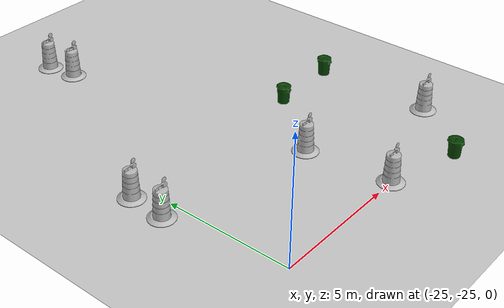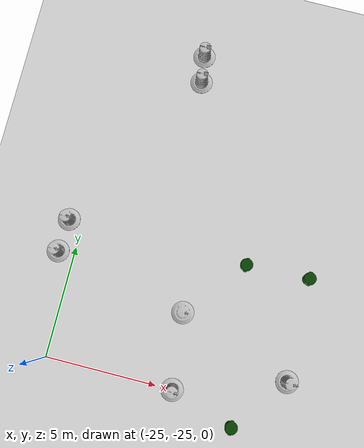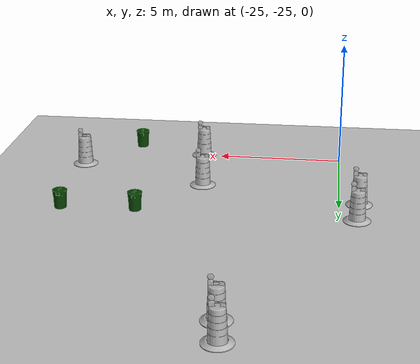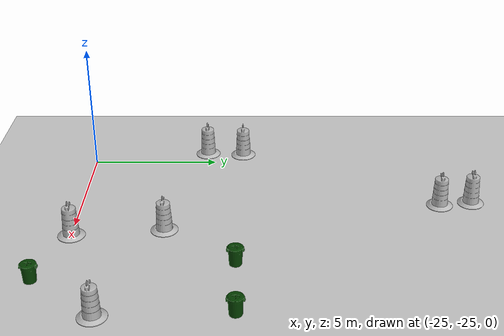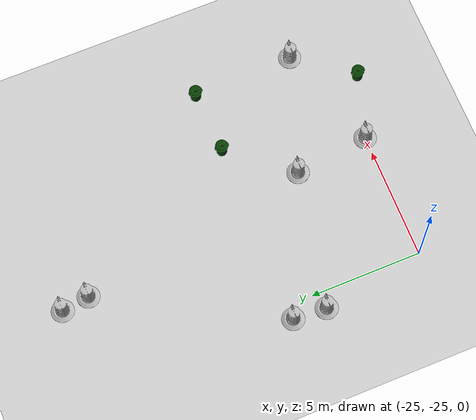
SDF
<sdf version="1.6">
 <world name="default">
  <model name="ground_plane">
   <static>1</static>
   <link name="link">
    <collision name="collision">
     <geometry><plane><normal>0 0 1</normal><size>100 100</size></plane></geometry>
     <surface>
      <contact><collide_bitmask>65535</collide_bitmask></contact>
      <friction><ode><mu>100</mu><mu2>50</mu2></ode></friction>
     </surface>
    </collision>
    <visual name="visual">
     <cast_shadows>0</cast_shadows>
     <geometry><plane><normal>0 0 1</normal><size>100 100</size></plane></geometry>
     <material>
      <script><uri>file://media/materials/scripts/gazebo.material</uri><name>Gazebo/Grey</name></script>
     </material>
    </visual>
   </link>
  </model>
  <model name="Construction Barrel_clone_0_clone_8">
   <link name="link">
    <inertial>
     <pose>0 0 0.4 0 -0 0</pose>
     <mass>500</mass>
     <inertia><ixx>51.2096</ixx><iyy>51.2096</iyy><izz>25</izz><ixy>0</ixy><ixz>0</ixz><iyz>0</iyz></inertia>
    </inertial>
    <collision name="collision">
     <geometry><mesh><uri>model://construction_barrel/meshes/construction_barrel.dae</uri></mesh></geometry>
    </collision>
    <visual name="visual">
     <geometry><mesh><uri>model://construction_barrel/meshes/construction_barrel.dae</uri></mesh></geometry>
    </visual>
   </link>
   <pose>-21.5907 -9.89433 0.024999 -1e-06 -3e-06 -0.008236</pose>
  </model>
  <model name="Construction Barrel_clone_0_clone_9">
   <link name="link">
    <inertial>
     <pose>0 0 0.4 0 -0 0</pose>
     <mass>500</mass>
     <inertia><ixx>51.2096</ixx><iyy>51.2096</iyy><izz>25</izz><ixy>0</ixy><ixz>0</ixz><iyz>0</iyz></inertia>
    </inertial>
    <collision name="collision">
     <geometry><mesh><uri>model://construction_barrel/meshes/construction_barrel.dae</uri></mesh></geometry>
    </collision>
    <visual name="visual">
     <geometry><mesh><uri>model://construction_barrel/meshes/construction_barrel.dae</uri></mesh></geometry>
    </visual>
   </link>
   <pose>-21.4181 -11.1299 0.024999 -1e-06 -3e-06 -0.008242</pose>
  </model>
  <model name="Construction Barrel_clone_0_clone_10">
   <link name="link">
    <inertial>
     <pose>0 0 0.4 0 -0 0</pose>
     <mass>500</mass>
     <inertia><ixx>51.2096</ixx><iyy>51.2096</iyy><izz>25</izz><ixy>0</ixy><ixz>0</ixz><iyz>0</iyz></inertia>
    </inertial>
    <collision name="collision">
     <geometry><mesh><uri>model://construction_barrel/meshes/construction_barrel.dae</uri></mesh></geometry>
    </collision>
    <visual name="visual">
     <geometry><mesh><uri>model://construction_barrel/meshes/construction_barrel.dae</uri></mesh></geometry>
    </visual>
   </link>
   <pose>-25.6503 -18.8355 0.024999 3e-06 0 -0.008236</pose>
  </model>
  <model name="Construction Barrel_clone_0_clone_11">
   <link name="link">
    <inertial>
     <pose>0 0 0.4 0 -0 0</pose>
     <mass>500</mass>
     <inertia><ixx>51.2096</ixx><iyy>51.2096</iyy><izz>25</izz><ixy>0</ixy><ixz>0</ixz><iyz>0</iyz></inertia>
    </inertial>
    <collision name="collision">
     <geometry><mesh><uri>model://construction_barrel/meshes/construction_barrel.dae</uri></mesh></geometry>
    </collision>
    <visual name="visual">
     <geometry><mesh><uri>model://construction_barrel/meshes/construction_barrel.dae</uri></mesh></geometry>
    </visual>
   </link>
   <pose>-25.7501 -20.3366 0.024999 -1e-06 -2e-06 -0.008237</pose>
  </model>
  <model name="Construction Barrel_clone_0_clone_12">
   <link name="link">
    <inertial>
     <pose>0 0 0.4 0 -0 0</pose>
     <mass>500</mass>
     <inertia><ixx>51.2096</ixx><iyy>51.2096</iyy><izz>25</izz><ixy>0</ixy><ixz>0</ixz><iyz>0</iyz></inertia>
    </inertial>
    <collision name="collision">
     <geometry><mesh><uri>model://construction_barrel/meshes/construction_barrel.dae</uri></mesh></geometry>
    </collision>
    <visual name="visual">
     <geometry><mesh><uri>model://construction_barrel/meshes/construction_barrel.dae</uri></mesh></geometry>
    </visual>
   </link>
   <pose>-19.6346 -21.6142 0.024999 -2e-06 -3e-06 -0.008238</pose>
  </model>
  <model name="Construction Barrel_clone_0_clone_13">
   <link name="link">
    <inertial>
     <pose>0 0 0.4 0 -0 0</pose>
     <mass>500</mass>
     <inertia><ixx>51.2096</ixx><iyy>51.2096</iyy><izz>25</izz><ixy>0</ixy><ixz>0</ixz><iyz>0</iyz></inertia>
    </inertial>
    <collision name="collision">
     <geometry><mesh><uri>model://construction_barrel/meshes/construction_barrel.dae</uri></mesh></geometry>
    </collision>
    <visual name="visual">
     <geometry><mesh><uri>model://construction_barrel/meshes/construction_barrel.dae</uri></mesh></geometry>
    </visual>
   </link>
   <pose>-19.2586 -24.988 0.024999 -1e-06 -2e-06 -0.00824</pose>
  </model>
  <model name="first_2015_trash_can">
   <link name="link">
    <inertial>
     <pose>0 0 0.3683 0 -0 0</pose>
     <mass>4.83076</mass>
     <inertia>
      <ixx>0.281534</ixx>
      <ixy>0</ixy>
      <ixz>0</ixz>
      <iyy>0.281534</iyy>
      <iyz>0</iyz>
      <izz>0.126223</izz>
     </inertia>
    </inertial>
    <visual name="visual">
     <geometry><mesh><uri>model://first_2015_trash_can/meshes/trash_can.dae</uri></mesh></geometry>
    </visual>
    <collision name="collision">
     <geometry><mesh><uri>model://first_2015_trash_can/meshes/trash_can.dae</uri></mesh></geometry>
    </collision>
   </link>
   <pose>-17.4322 -18.9095 0.024998 -2e-06 1.4e-05 -0.000556</pose>
  </model>
  <model name="first_2015_trash_can_clone">
   <link name="link">
    <inertial>
     <pose>0 0 0.3683 0 -0 0</pose>
     <mass>4.83076</mass>
     <inertia>
      <ixx>0.281534</ixx>
      <ixy>0</ixy>
      <ixz>0</ixz>
      <iyy>0.281534</iyy>
      <iyz>0</iyz>
      <izz>0.126223</izz>
     </inertia>
    </inertial>
    <visual name="visual">
     <geometry><mesh><uri>model://first_2015_trash_can/meshes/trash_can.dae</uri></mesh></geometry>
    </visual>
    <collision name="collision">
     <geometry><mesh><uri>model://first_2015_trash_can/meshes/trash_can.dae</uri></mesh></geometry>
    </collision>
   </link>
   <pose>-14.6012 -18.8134 0.025001 2.5e-05 -8e-06 -0.000584</pose>
  </model>
  <model name="first_2015_trash_can_clone_4">
   <link name="link">
    <inertial>
     <pose>0 0 0.3683 0 -0 0</pose>
     <mass>4.83076</mass>
     <inertia>
      <ixx>0.281534</ixx>
      <ixy>0</ixy>
      <ixz>0</ixz>
      <iyy>0.281534</iyy>
      <iyz>0</iyz>
      <izz>0.126223</izz>
     </inertia>
    </inertial>
    <visual name="visual">
     <geometry><mesh><uri>model://first_2015_trash_can/meshes/trash_can.dae</uri></mesh></geometry>
    </visual>
    <collision name="collision">
     <geometry><mesh><uri>model://first_2015_trash_can/meshes/trash_can.dae</uri></mesh></geometry>
    </collision>
   </link>
   <pose>-16.4244 -25.8484 0.024995 1e-06 -3e-06 -0.000417</pose>
  </model>
  <model name="Construction Barrel_clone_0_clone_13_clone">
   <link name="link">
    <inertial>
     <pose>0 0 0.4 0 -0 0</pose>
     <mass>500</mass>
     <inertia><ixx>51.2096</ixx><iyy>51.2096</iyy><izz>25</izz><ixy>0</ixy><ixz>0</ixz><iyz>0</iyz></inertia>
    </inertial>
    <collision name="collision">
     <geometry><mesh><uri>model://construction_barrel/meshes/construction_barrel.dae</uri></mesh></geometry>
    </collision>
    <visual name="visual">
     <geometry><mesh><uri>model://construction_barrel/meshes/construction_barrel.dae</uri></mesh></geometry>
    </visual>
   </link>
   <pose>-14.4515 -23.4091 0.024999 3e-06 0 -0.008241</pose>
  </model>
 </world>
</sdf>
